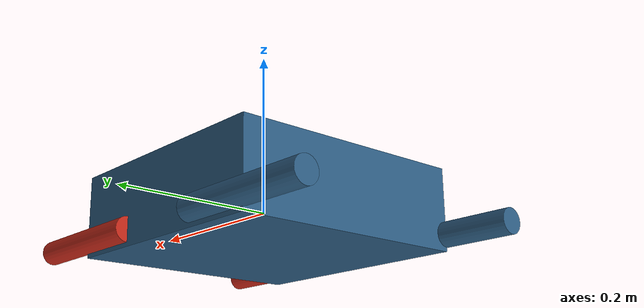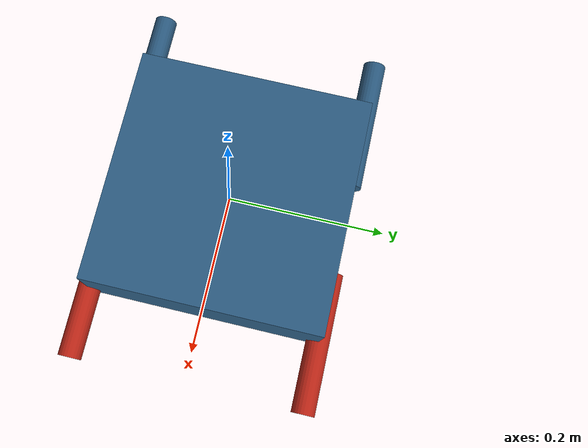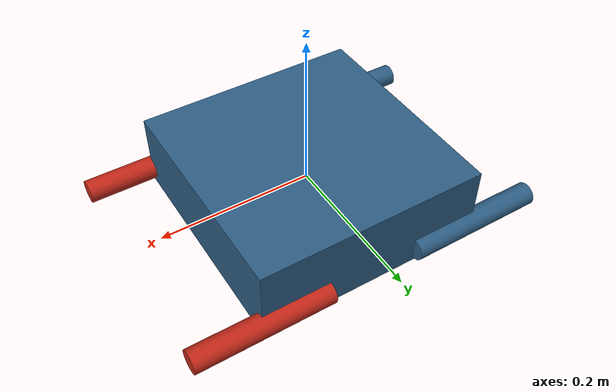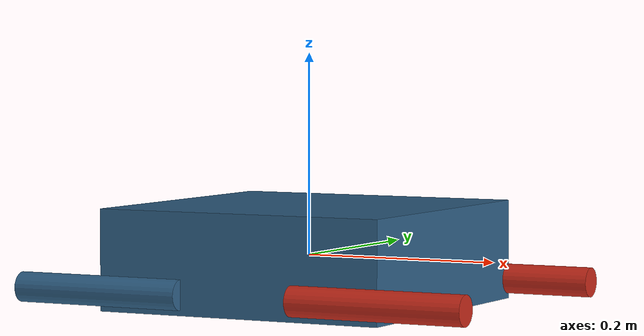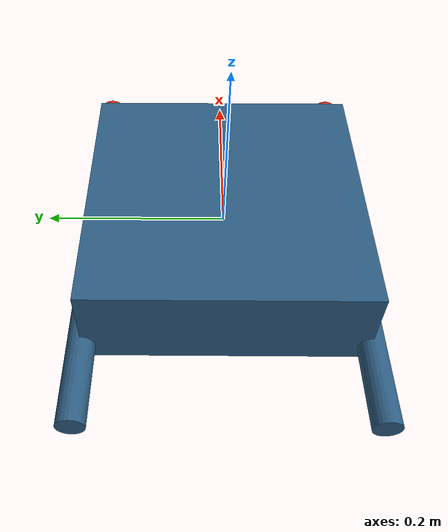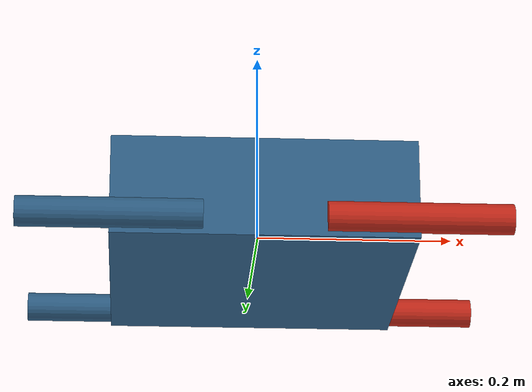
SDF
<?xml version="1.0" ?>
<sdf version="1.10">
  <model name="aether_drone">
    <pose>0 0 0 0 0 0</pose>

    <link name="base_link">
      <gravity>false</gravity>
      <inertial>
        <mass>1.5</mass>
        <inertia><ixx>0.015</ixx><iyy>0.015</iyy><izz>0.025</izz>
                 <ixy>0</ixy><ixz>0</ixz><iyz>0</iyz></inertia>
      </inertial>
      <collision name="c"><geometry><box><size>0.30 0.30 0.10</size></box></geometry></collision>
      <visual name="v">
        <geometry><box><size>0.30 0.30 0.10</size></box></geometry>
        <material><ambient>0.12 0.16 0.21 1</ambient><diffuse>0.18 0.37 0.52 1</diffuse></material>
      </visual>

      <!-- HG4930-class IMU @ 200 Hz -->
      <sensor name="imu" type="imu">
        <always_on>true</always_on>
        <update_rate>200</update_rate>
        <topic>imu/data</topic>
        <imu>
          <angular_velocity>
            <x><noise type="gaussian"><mean>0</mean><stddev>1.6968e-04</stddev>
               <bias_mean>0</bias_mean><bias_stddev>1.2e-05</bias_stddev></noise></x>
            <y><noise type="gaussian"><mean>0</mean><stddev>1.6968e-04</stddev>
               <bias_mean>0</bias_mean><bias_stddev>1.2e-05</bias_stddev></noise></y>
            <z><noise type="gaussian"><mean>0</mean><stddev>1.6968e-04</stddev>
               <bias_mean>0</bias_mean><bias_stddev>1.2e-05</bias_stddev></noise></z>
          </angular_velocity>
          <linear_acceleration>
            <x><noise type="gaussian"><mean>0</mean><stddev>2.0e-03</stddev>
               <bias_mean>0</bias_mean><bias_stddev>5.0e-04</bias_stddev></noise></x>
            <y><noise type="gaussian"><mean>0</mean><stddev>2.0e-03</stddev>
               <bias_mean>0</bias_mean><bias_stddev>5.0e-04</bias_stddev></noise></y>
            <z><noise type="gaussian"><mean>0</mean><stddev>2.0e-03</stddev>
               <bias_mean>0</bias_mean><bias_stddev>5.0e-04</bias_stddev></noise></z>
          </linear_acceleration>
        </imu>
      </sensor>

      <!-- stereo cameras @ 20 Hz, baseline 0.12 m -->
      <sensor name="camera_left" type="camera">
        <always_on>true</always_on>
        <update_rate>20</update_rate>
        <topic>camera/left/image_raw</topic>
        <pose>0.10 0.06 0.0 0 0 0</pose>
        <camera>
          <horizontal_fov>1.047</horizontal_fov>
          <image><width>640</width><height>480</height><format>R8G8B8</format></image>
          <clip><near>0.05</near><far>120</far></clip>
        </camera>
      </sensor>
      <sensor name="camera_right" type="camera">
        <always_on>true</always_on>
        <update_rate>20</update_rate>
        <topic>camera/right/image_raw</topic>
        <pose>0.10 -0.06 0.0 0 0 0</pose>
        <camera>
          <horizontal_fov>1.047</horizontal_fov>
          <image><width>640</width><height>480</height><format>R8G8B8</format></image>
          <clip><near>0.05</near><far>120</far></clip>
        </camera>
      </sensor>
    </link>

    <!-- four arms (visual only, fixed) -->
    <link name="arm_fl"><pose>0.15 0.15 -0.03 0 1.5708 0</pose><gravity>false</gravity>
      <inertial><mass>0.05</mass><inertia><ixx>1e-4</ixx><iyy>1e-4</iyy><izz>1e-4</izz>
        <ixy>0</ixy><ixz>0</ixz><iyz>0</iyz></inertia></inertial>
      <visual name="v"><geometry><cylinder><radius>0.015</radius><length>0.18</length></cylinder></geometry>
        <material><ambient>0.77 0.16 0.10 1</ambient></material></visual></link>
    <joint name="j_fl" type="fixed"><parent>base_link</parent><child>arm_fl</child></joint>
    <link name="arm_fr"><pose>0.15 -0.15 -0.03 0 1.5708 0</pose><gravity>false</gravity>
      <inertial><mass>0.05</mass><inertia><ixx>1e-4</ixx><iyy>1e-4</iyy><izz>1e-4</izz>
        <ixy>0</ixy><ixz>0</ixz><iyz>0</iyz></inertia></inertial>
      <visual name="v"><geometry><cylinder><radius>0.015</radius><length>0.18</length></cylinder></geometry>
        <material><ambient>0.77 0.16 0.10 1</ambient></material></visual></link>
    <joint name="j_fr" type="fixed"><parent>base_link</parent><child>arm_fr</child></joint>
    <link name="arm_bl"><pose>-0.15 0.15 -0.03 0 1.5708 0</pose><gravity>false</gravity>
      <inertial><mass>0.05</mass><inertia><ixx>1e-4</ixx><iyy>1e-4</iyy><izz>1e-4</izz>
        <ixy>0</ixy><ixz>0</ixz><iyz>0</iyz></inertia></inertial>
      <visual name="v"><geometry><cylinder><radius>0.015</radius><length>0.18</length></cylinder></geometry>
        <material><ambient>0.18 0.37 0.52 1</ambient></material></visual></link>
    <joint name="j_bl" type="fixed"><parent>base_link</parent><child>arm_bl</child></joint>
    <link name="arm_br"><pose>-0.15 -0.15 -0.03 0 1.5708 0</pose><gravity>false</gravity>
      <inertial><mass>0.05</mass><inertia><ixx>1e-4</ixx><iyy>1e-4</iyy><izz>1e-4</izz>
        <ixy>0</ixy><ixz>0</ixz><iyz>0</iyz></inertia></inertial>
      <visual name="v"><geometry><cylinder><radius>0.015</radius><length>0.18</length></cylinder></geometry>
        <material><ambient>0.18 0.37 0.52 1</ambient></material></visual></link>
    <joint name="j_br" type="fixed"><parent>base_link</parent><child>arm_br</child></joint>

    <!-- GROUND TRUTH: exact model pose -> /aether/ground_truth (nav_msgs/Odometry) -->
    <plugin filename="gz-sim-odometry-publisher-system"
            name="gz::sim::systems::OdometryPublisher">
      <odom_frame>odom</odom_frame>
      <robot_base_frame>aether_drone</robot_base_frame>
      <odom_topic>aether/ground_truth</odom_topic>
      <dimensions>3</dimensions>
    </plugin>

    <plugin filename="gz-sim-velocity-control-system"
            name="gz::sim::systems::VelocityControl">
    </plugin>
  </model>
</sdf>
